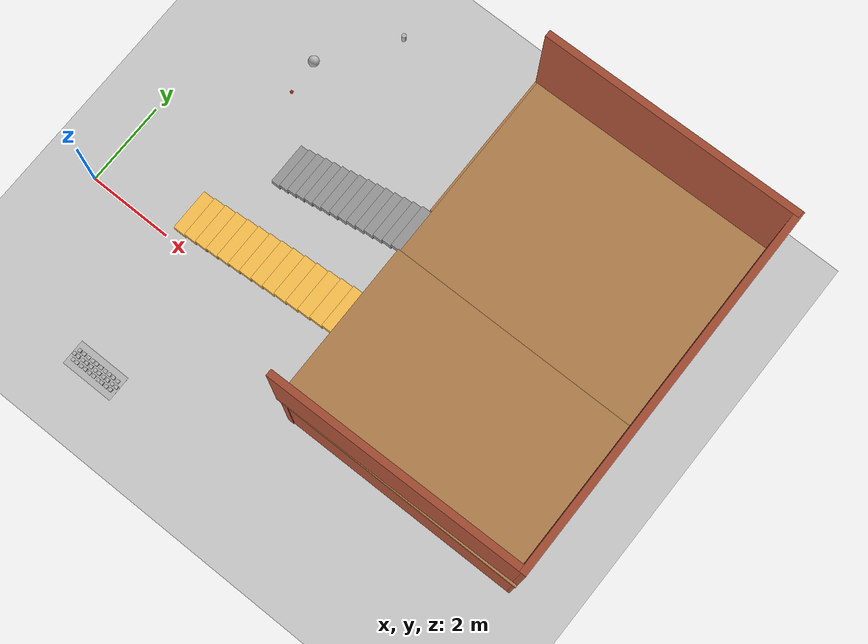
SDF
<sdf version="1.7">
 <world name="default">
  <model name="ground_plane">
   <static>1</static>
   <link name="link">
    <collision name="collision">
     <geometry><plane><normal>0 0 1</normal><size>100 100</size></plane></geometry>
     <surface><friction><ode><mu>100</mu><mu2>50</mu2></ode></friction></surface>
    </collision>
    <visual name="visual">
     <cast_shadows>0</cast_shadows>
     <geometry><plane><normal>0 0 1</normal><size>100 100</size></plane></geometry>
     <material>
      <script><uri>file://media/materials/scripts/gazebo.material</uri><name>Gazebo/Grey</name></script>
     </material>
    </visual>
   </link>
  </model>
  <model name="frc2016_ball">
   <pose>1.98556 4.93259 0.127 0 -0 0</pose>
   <link name="link">
    <inertial>
     <mass>0.213</mass>
     <inertia>
      <ixx>0.00322667</ixx>
      <ixy>0</ixy>
      <ixz>0</ixz>
      <iyy>0.00322667</iyy>
      <iyz>0</iyz>
      <izz>0.00322667</izz>
     </inertia>
    </inertial>
    <visual name="visual"><geometry><sphere><radius>0.127</radius></sphere></geometry></visual>
    <collision name="collision">
     <geometry><sphere><radius>0.127</radius></sphere></geometry>
     <surface>
      <bounce><restitution_coefficient>0.15937</restitution_coefficient><threshold>0</threshold></bounce>
      <contact><ode><max_vel>100</max_vel><min_depth>0.001</min_depth></ode></contact>
     </surface>
    </collision>
   </link>
  </model>
  <model name="beer">
   <link name="link">
    <pose>0 0 0.115 0 -0 0</pose>
    <inertial>
     <mass>0.39</mass>
     <inertia><ixx>0.00058</ixx><ixy>0</ixy><ixz>0</ixz><iyy>0.00058</iyy><iyz>0</iyz><izz>0.00019</izz></inertia>
    </inertial>
    <collision name="collision">
     <geometry><cylinder><radius>0.055</radius><length>0.23</length></cylinder></geometry>
    </collision>
    <visual name="visual">
     <geometry><cylinder><radius>0.055</radius><length>0.23</length></cylinder></geometry>
     <material>
      <script>
       <uri>model://beer/materials/scripts</uri>
       <uri>model://beer/materials/textures</uri>
       <name>Beer/Diffuse</name>
      </script>
     </material>
    </visual>
   </link>
   <pose>3.1628 6.57992 -7e-06 0 0 -3.1e-05</pose>
  </model>
  <model name="cricket_ball">
   <link name="link">
    <pose>0 0 0.0375 0 -0 0</pose>
    <inertial>
     <mass>0.1467</mass>
     <inertia>
      <ixx>8.25187e-05</ixx>
      <ixy>0</ixy>
      <ixz>0</ixz>
      <iyy>8.25187e-05</iyy>
      <iyz>0</iyz>
      <izz>8.25187e-05</izz>
     </inertia>
    </inertial>
    <collision name="collision">
     <geometry><sphere><radius>0.0375</radius></sphere></geometry>
     <surface>
      <contact>
       <poissons_ratio>0.347</poissons_ratio>
       <elastic_modulus>8.8e+09</elastic_modulus>
       <ode><kp>100000</kp><kd>100</kd><max_vel>100</max_vel><min_depth>0.001</min_depth></ode>
      </contact>
      <friction>
       <torsional>
        <coefficient>1</coefficient>
        <use_patch_radius>0</use_patch_radius>
        <surface_radius>0.01</surface_radius>
       </torsional>
      </friction>
     </surface>
    </collision>
    <visual name="visual">
     <geometry><sphere><radius>0.0375</radius></sphere></geometry>
     <material>
      <script><uri>file://media/materials/scripts/gazebo.material</uri><name>Gazebo/Red</name></script>
     </material>
    </visual>
    <velocity_decay><linear>0</linear><angular>0.005</angular></velocity_decay>
   </link>
   <pose>2.0353 4.1192 -0.001014 0 -0 0</pose>
  </model>
  <model name="stairs2_0">
   <pose>7.61055 2.7524 0 0 -0 1.5768</pose>
   <link name="Floor_4">
    <pose>-0.01758 -1.72707 2.5 0 -0 0</pose>
    <visual name="Floor_4_Visual_0">
     <pose>-2.30149 0 0.05 0 -0 0</pose>
     <geometry><box><size>3.75682 5.7631 0.1</size></box></geometry>
     <material>
      <script><uri>file://media/materials/scripts/gazebo.material</uri><name>Gazebo/Wood</name></script>
      <ambient>1 1 1 1</ambient>
     </material>
     <meta><layer>1</layer></meta>
    </visual>
    <collision name="Floor_4_Collision_0">
     <geometry><box><size>3.75682 5.7631 0.1</size></box></geometry>
     <pose>-2.30149 0 0.05 0 -0 0</pose>
    </collision>
    <visual name="Floor_4_Visual_1">
     <pose>1.87841 -0.022934 0.05 0 -0 0</pose>
     <geometry><box><size>4.60298 5.71723 0.1</size></box></geometry>
     <material>
      <script><uri>file://media/materials/scripts/gazebo.material</uri><name>Gazebo/Wood</name></script>
      <ambient>1 1 1 1</ambient>
     </material>
     <meta><layer>1</layer></meta>
    </visual>
    <collision name="Floor_4_Collision_1">
     <geometry><box><size>4.60298 5.71723 0.1</size></box></geometry>
     <pose>1.87841 -0.022934 0.05 0 -0 0</pose>
    </collision>
    <visual name="Floor_4_Visual_2">
     <pose>2.37841 2.85862 0.05 0 -0 0</pose>
     <geometry><box><size>3.60298 0.045868 0.1</size></box></geometry>
     <material>
      <script><uri>file://media/materials/scripts/gazebo.material</uri><name>Gazebo/Wood</name></script>
      <ambient>1 1 1 1</ambient>
     </material>
     <meta><layer>1</layer></meta>
    </visual>
    <collision name="Floor_4_Collision_2">
     <geometry><box><size>3.60298 0.045868 0.1</size></box></geometry>
     <pose>2.37841 2.85862 0.05 0 -0 0</pose>
    </collision>
   </link>
   <link name="Stairs_3">
    <visual name="Stairs_3_Visual_0">
     <pose>0.059339 4.49195 0.083333 0 -0 0</pose>
     <geometry><box><size>1 0.233333 0.166667</size></box></geometry>
     <material>
      <script><uri>file://media/materials/scripts/gazebo.material</uri><name>Gazebo/Grey</name></script>
      <ambient>1 1 1 1</ambient>
     </material>
     <meta><layer>0</layer></meta>
    </visual>
    <collision name="Stairs_3_Collision_0">
     <geometry><box><size>1 0.233333 0.166667</size></box></geometry>
     <pose>0.059339 4.49195 0.083333 0 -0 0</pose>
    </collision>
    <visual name="Stairs_3_Visual_1">
     <pose>0.059339 4.25862 0.25 0 -0 0</pose>
     <geometry><box><size>1 0.233333 0.166667</size></box></geometry>
     <material>
      <script><uri>file://media/materials/scripts/gazebo.material</uri><name>Gazebo/Grey</name></script>
      <ambient>1 1 1 1</ambient>
     </material>
     <meta><layer>0</layer></meta>
    </visual>
    <collision name="Stairs_3_Collision_1">
     <geometry><box><size>1 0.233333 0.166667</size></box></geometry>
     <pose>0.059339 4.25862 0.25 0 -0 0</pose>
    </collision>
    <visual name="Stairs_3_Visual_2">
     <pose>0.059339 4.02528 0.416667 0 -0 0</pose>
     <geometry><box><size>1 0.233333 0.166667</size></box></geometry>
     <material>
      <script><uri>file://media/materials/scripts/gazebo.material</uri><name>Gazebo/Grey</name></script>
      <ambient>1 1 1 1</ambient>
     </material>
     <meta><layer>0</layer></meta>
    </visual>
    <collision name="Stairs_3_Collision_2">
     <geometry><box><size>1 0.233333 0.166667</size></box></geometry>
     <pose>0.059339 4.02528 0.416667 0 -0 0</pose>
    </collision>
    <visual name="Stairs_3_Visual_3">
     <pose>0.059339 3.79195 0.583333 0 -0 0</pose>
     <geometry><box><size>1 0.233333 0.166667</size></box></geometry>
     <material>
      <script><uri>file://media/materials/scripts/gazebo.material</uri><name>Gazebo/Grey</name></script>
      <ambient>1 1 1 1</ambient>
     </material>
     <meta><layer>0</layer></meta>
    </visual>
    <collision name="Stairs_3_Collision_3">
     <geometry><box><size>1 0.233333 0.166667</size></box></geometry>
     <pose>0.059339 3.79195 0.583333 0 -0 0</pose>
    </collision>
    <visual name="Stairs_3_Visual_4">
     <pose>0.059339 3.55862 0.75 0 -0 0</pose>
     <geometry><box><size>1 0.233333 0.166667</size></box></geometry>
     <material>
      <script><uri>file://media/materials/scripts/gazebo.material</uri><name>Gazebo/Grey</name></script>
      <ambient>1 1 1 1</ambient>
     </material>
     <meta><layer>0</layer></meta>
    </visual>
    <collision name="Stairs_3_Collision_4">
     <geometry><box><size>1 0.233333 0.166667</size></box></geometry>
     <pose>0.059339 3.55862 0.75 0 -0 0</pose>
    </collision>
    <visual name="Stairs_3_Visual_5">
     <pose>0.059339 3.32528 0.916667 0 -0 0</pose>
     <geometry><box><size>1 0.233333 0.166667</size></box></geometry>
     <material>
      <script><uri>file://media/materials/scripts/gazebo.material</uri><name>Gazebo/Grey</name></script>
      <ambient>1 1 1 1</ambient>
     </material>
     <meta><layer>0</layer></meta>
    </visual>
    <collision name="Stairs_3_Collision_5">
     <geometry><box><size>1 0.233333 0.166667</size></box></geometry>
     <pose>0.059339 3.32528 0.916667 0 -0 0</pose>
    </collision>
    <visual name="Stairs_3_Visual_6">
     <pose>0.059339 3.09195 1.08333 0 -0 0</pose>
     <geometry><box><size>1 0.233333 0.166667</size></box></geometry>
     <material>
      <script><uri>file://media/materials/scripts/gazebo.material</uri><name>Gazebo/Grey</name></script>
      <ambient>1 1 1 1</ambient>
     </material>
     <meta><layer>0</layer></meta>
    </visual>
    <collision name="Stairs_3_Collision_6">
     <geometry><box><size>1 0.233333 0.166667</size></box></geometry>
     <pose>0.059339 3.09195 1.08333 0 -0 0</pose>
    </collision>
    <visual name="Stairs_3_Visual_7">
     <pose>0.059339 2.85862 1.25 0 -0 0</pose>
     <geometry><box><size>1 0.233333 0.166667</size></box></geometry>
     <material>
      <script><uri>file://media/materials/scripts/gazebo.material</uri><name>Gazebo/Grey</name></script>
      <ambient>1 1 1 1</ambient>
     </material>
     <meta><layer>0</layer></meta>
    </visual>
    <collision name="Stairs_3_Collision_7">
     <geometry><box><size>1 0.233333 0.166667</size></box></geometry>
     <pose>0.059339 2.85862 1.25 0 -0 0</pose>
    </collision>
    <visual name="Stairs_3_Visual_8">
     <pose>0.059339 2.62528 1.41667 0 -0 0</pose>
     <geometry><box><size>1 0.233333 0.166667</size></box></geometry>
     <material>
      <script><uri>file://media/materials/scripts/gazebo.material</uri><name>Gazebo/Grey</name></script>
      <ambient>1 1 1 1</ambient>
     </material>
     <meta><layer>0</layer></meta>
    </visual>
    <collision name="Stairs_3_Collision_8">
     <geometry><box><size>1 0.233333 0.166667</size></box></geometry>
     <pose>0.059339 2.62528 1.41667 0 -0 0</pose>
    </collision>
    <visual name="Stairs_3_Visual_9">
     <pose>0.059339 2.39195 1.58333 0 -0 0</pose>
     <geometry><box><size>1 0.233333 0.166667</size></box></geometry>
     <material>
      <script><uri>file://media/materials/scripts/gazebo.material</uri><name>Gazebo/Grey</name></script>
      <ambient>1 1 1 1</ambient>
     </material>
     <meta><layer>0</layer></meta>
    </visual>
    <collision name="Stairs_3_Collision_9">
     <geometry><box><size>1 0.233333 0.166667</size></box></geometry>
     <pose>0.059339 2.39195 1.58333 0 -0 0</pose>
    </collision>
    <visual name="Stairs_3_Visual_10">
     <pose>0.059339 2.15862 1.75 0 -0 0</pose>
     <geometry><box><size>1 0.233333 0.166667</size></box></geometry>
     <material>
      <script><uri>file://media/materials/scripts/gazebo.material</uri><name>Gazebo/Grey</name></script>
      <ambient>1 1 1 1</ambient>
     </material>
     <meta><layer>0</layer></meta>
    </visual>
    <collision name="Stairs_3_Collision_10">
     <geometry><box><size>1 0.233333 0.166667</size></box></geometry>
     <pose>0.059339 2.15862 1.75 0 -0 0</pose>
    </collision>
    <visual name="Stairs_3_Visual_11">
     <pose>0.059339 1.92528 1.91667 0 -0 0</pose>
     <geometry><box><size>1 0.233333 0.166667</size></box></geometry>
     <material>
      <script><uri>file://media/materials/scripts/gazebo.material</uri><name>Gazebo/Grey</name></script>
      <ambient>1 1 1 1</ambient>
     </material>
     <meta><layer>0</layer></meta>
    </visual>
    <collision name="Stairs_3_Collision_11">
     <geometry><box><size>1 0.233333 0.166667</size></box></geometry>
     <pose>0.059339 1.92528 1.91667 0 -0 0</pose>
    </collision>
    <visual name="Stairs_3_Visual_12">
     <pose>0.059339 1.69195 2.08333 0 -0 0</pose>
     <geometry><box><size>1 0.233333 0.166667</size></box></geometry>
     <material>
      <script><uri>file://media/materials/scripts/gazebo.material</uri><name>Gazebo/Grey</name></script>
      <ambient>1 1 1 1</ambient>
     </material>
     <meta><layer>0</layer></meta>
    </visual>
    <collision name="Stairs_3_Collision_12">
     <geometry><box><size>1 0.233333 0.166667</size></box></geometry>
     <pose>0.059339 1.69195 2.08333 0 -0 0</pose>
    </collision>
    <visual name="Stairs_3_Visual_13">
     <pose>0.059339 1.45862 2.25 0 -0 0</pose>
     <geometry><box><size>1 0.233333 0.166667</size></box></geometry>
     <material>
      <script><uri>file://media/materials/scripts/gazebo.material</uri><name>Gazebo/Grey</name></script>
      <ambient>1 1 1 1</ambient>
     </material>
     <meta><layer>0</layer></meta>
    </visual>
    <collision name="Stairs_3_Collision_13">
     <geometry><box><size>1 0.233333 0.166667</size></box></geometry>
     <pose>0.059339 1.45862 2.25 0 -0 0</pose>
    </collision>
    <visual name="Stairs_3_Visual_14">
     <pose>0.059339 1.22528 2.41667 0 -0 0</pose>
     <geometry><box><size>1 0.233333 0.166667</size></box></geometry>
     <material>
      <script><uri>file://media/materials/scripts/gazebo.material</uri><name>Gazebo/Grey</name></script>
      <ambient>1 1 1 1</ambient>
     </material>
     <meta><layer>0</layer></meta>
    </visual>
    <collision name="Stairs_3_Collision_14">
     <geometry><box><size>1 0.233333 0.166667</size></box></geometry>
     <pose>0.059339 1.22528 2.41667 0 -0 0</pose>
    </collision>
   </link>
   <link name="Wall_44">
    <collision name="Wall_44_Collision">
     <geometry><box><size>5.70366 0.15 2.5</size></box></geometry>
     <pose>0 0 1.25 0 -0 0</pose>
    </collision>
    <visual name="Wall_44_Visual">
     <pose>0 0 1.25 0 -0 0</pose>
     <geometry><box><size>5.70366 0.15 2.5</size></box></geometry>
     <material>
      <script><uri>file://media/materials/scripts/gazebo.material</uri><name>Gazebo/Bricks</name></script>
      <ambient>1 1 1 1</ambient>
     </material>
     <meta><layer>0</layer></meta>
    </visual>
    <pose>-4.0693 -1.71554 0 0 -0 -1.5708</pose>
   </link>
   <link name="Wall_45">
    <collision name="Wall_45_Collision">
     <geometry><box><size>8.30592 0.15 2.5</size></box></geometry>
     <pose>0 0 1.25 0 -0 0</pose>
    </collision>
    <visual name="Wall_45_Visual">
     <pose>0 0 1.25 0 -0 0</pose>
     <geometry><box><size>8.30592 0.15 2.5</size></box></geometry>
     <material>
      <script><uri>file://media/materials/scripts/gazebo.material</uri><name>Gazebo/Bricks</name></script>
      <ambient>1 1 1 1</ambient>
     </material>
     <meta><layer>0</layer></meta>
    </visual>
    <pose>0.008655 -4.53046 0 0 -0 -0.000761</pose>
   </link>
   <link name="Wall_46">
    <collision name="Wall_46_Collision">
     <geometry><box><size>5.6862 0.15 2.5</size></box></geometry>
     <pose>0 0 1.25 0 -0 0</pose>
    </collision>
    <visual name="Wall_46_Visual">
     <pose>0 0 1.25 0 -0 0</pose>
     <geometry><box><size>5.6862 0.15 2.5</size></box></geometry>
     <material>
      <script><uri>file://media/materials/scripts/gazebo.material</uri><name>Gazebo/Bricks</name></script>
      <ambient>1 1 1 1</ambient>
     </material>
     <meta><layer>0</layer></meta>
    </visual>
    <pose>4.07787 -1.73049 0 0 -0 1.57396</pose>
   </link>
   <link name="Wall_47">
    <collision name="Wall_47_Collision">
     <geometry><box><size>8.30592 0.15 2.5</size></box></geometry>
     <pose>0 0 1.25 0 -0 0</pose>
    </collision>
    <visual name="Wall_47_Visual">
     <pose>0 0 1.25 0 -0 0</pose>
     <geometry><box><size>8.30592 0.15 2.5</size></box></geometry>
     <material>
      <script><uri>file://media/materials/scripts/gazebo.material</uri><name>Gazebo/Bricks</name></script>
      <ambient>1 1 1 1</ambient>
     </material>
     <meta><layer>0</layer></meta>
    </visual>
    <pose>-0.008835 1.0407 0 0 -0 3.14083</pose>
   </link>
   <link name="Wall_49">
    <collision name="Wall_49_Collision">
     <geometry><box><size>5.7214 0.15 2.5</size></box></geometry>
     <pose>0 0 1.25 0 -0 0</pose>
    </collision>
    <visual name="Wall_49_Visual">
     <pose>0 0 1.25 0 -0 0</pose>
     <geometry><box><size>5.7214 0.15 2.5</size></box></geometry>
     <material>
      <script><uri>file://media/materials/scripts/gazebo.material</uri><name>Gazebo/Bricks</name></script>
      <ambient>1 1 1 1</ambient>
     </material>
     <meta><layer>1</layer></meta>
    </visual>
    <pose>-4.09554 -1.7068 2.5 0 -0 -1.56138</pose>
   </link>
   <link name="Wall_50">
    <collision name="Wall_50_Collision">
     <geometry><box><size>8.30592 0.15 2.5</size></box></geometry>
     <pose>0 0 1.25 0 -0 0</pose>
    </collision>
    <visual name="Wall_50_Visual">
     <pose>0 0 1.25 0 -0 0</pose>
     <geometry><box><size>8.30592 0.15 2.5</size></box></geometry>
     <material>
      <script><uri>file://media/materials/scripts/gazebo.material</uri><name>Gazebo/Bricks</name></script>
      <ambient>1 1 1 1</ambient>
     </material>
     <meta><layer>1</layer></meta>
    </visual>
    <pose>0.008655 -4.53045 2.5 0 -0 -0.000761</pose>
   </link>
   <link name="Wall_51">
    <collision name="Wall_51_Collision">
     <geometry><box><size>5.7214 0.15 2.5</size></box></geometry>
     <pose>0 0 1.25 0 -0 0</pose>
    </collision>
    <visual name="Wall_51_Visual">
     <pose>0 0 1.25 0 -0 0</pose>
     <geometry><box><size>5.7214 0.15 2.5</size></box></geometry>
     <material>
      <script><uri>file://media/materials/scripts/gazebo.material</uri><name>Gazebo/Bricks</name></script>
      <ambient>1 1 1 1</ambient>
     </material>
     <meta><layer>1</layer></meta>
    </visual>
    <pose>4.06038 -1.713 2.5 0 -0 1.58021</pose>
   </link>
   <static>1</static>
  </model>
  <model name="frc2016_roughterrain_3">
   <static>1</static>
   <link name="link">
    <visual name="platform">
     <pose>0 0 0.08269 0 -0 0</pose>
     <geometry><box><size>1.27 0.5969 0.003175</size></box></geometry>
    </visual>
    <collision name="platform">
     <pose>0 0 0.08269 0 -0 0</pose>
     <geometry><box><size>1.27 0.5969 0.003175</size></box></geometry>
    </collision>
    <visual name="row1_block1_sm">
     <pose>0.51435 0.1143 0.09698 0 -0 0</pose>
     <geometry><box><size>0.0762 0.0762 0.0254</size></box></geometry>
    </visual>
    <collision name="row1_block1_sm">
     <pose>0.51435 0.1143 0.09698 0 -0 0</pose>
     <geometry><box><size>0.0762 0.0762 0.0254</size></box></geometry>
    </collision>
    <visual name="row1_block2_lg">
     <pose>0.40005 0.1143 0.12238 0 -0 0</pose>
     <geometry><box><size>0.0762 0.0762 0.0762</size></box></geometry>
    </visual>
    <collision name="row1_block2_lg">
     <pose>0.40005 0.1143 0.12238 0 -0 0</pose>
     <geometry><box><size>0.0762 0.0762 0.0762</size></box></geometry>
    </collision>
    <visual name="row1_block3_md">
     <pose>0.28575 0.1143 0.10968 0 -0 0</pose>
     <geometry><box><size>0.0762 0.0762 0.0508</size></box></geometry>
    </visual>
    <collision name="row1_block3_md">
     <pose>0.28575 0.1143 0.10968 0 -0 0</pose>
     <geometry><box><size>0.0762 0.0762 0.0508</size></box></geometry>
    </collision>
    <visual name="row1_block4_sm">
     <pose>0.17145 0.1143 0.09698 0 -0 0</pose>
     <geometry><box><size>0.0762 0.0762 0.0254</size></box></geometry>
    </visual>
    <collision name="row1_block4_sm">
     <pose>0.17145 0.1143 0.09698 0 -0 0</pose>
     <geometry><box><size>0.0762 0.0762 0.0254</size></box></geometry>
    </collision>
    <visual name="row1_block5_md">
     <pose>0.05715 0.1143 0.10968 0 -0 0</pose>
     <geometry><box><size>0.0762 0.0762 0.0508</size></box></geometry>
    </visual>
    <collision name="row1_block5_md">
     <pose>0.05715 0.1143 0.10968 0 -0 0</pose>
     <geometry><box><size>0.0762 0.0762 0.0508</size></box></geometry>
    </collision>
    <visual name="row1_block6_lg">
     <pose>-0.05715 0.1143 0.12238 0 -0 0</pose>
     <geometry><box><size>0.0762 0.0762 0.0762</size></box></geometry>
    </visual>
    <collision name="row1_block6_lg">
     <pose>-0.05715 0.1143 0.12238 0 -0 0</pose>
     <geometry><box><size>0.0762 0.0762 0.0762</size></box></geometry>
    </collision>
    <visual name="row1_block7_sm">
     <pose>-0.17145 0.1143 0.09698 0 -0 0</pose>
     <geometry><box><size>0.0762 0.0762 0.0254</size></box></geometry>
    </visual>
    <collision name="row1_block7_sm">
     <pose>-0.17145 0.1143 0.09698 0 -0 0</pose>
     <geometry><box><size>0.0762 0.0762 0.0254</size></box></geometry>
    </collision>
    <visual name="row1_block8_sm">
     <pose>-0.28575 0.1143 0.09698 0 -0 0</pose>
     <geometry><box><size>0.0762 0.0762 0.0254</size></box></geometry>
    </visual>
    <collision name="row1_block8_sm">
     <pose>-0.28575 0.1143 0.09698 0 -0 0</pose>
     <geometry><box><size>0.0762 0.0762 0.0254</size></box></geometry>
    </collision>
    <visual name="row1_block9_md">
     <pose>-0.40005 0.1143 0.10968 0 -0 0</pose>
     <geometry><box><size>0.0762 0.0762 0.0508</size></box></geometry>
    </visual>
    <collision name="row1_block9_md">
     <pose>-0.40005 0.1143 0.10968 0 -0 0</pose>
     <geometry><box><size>0.0762 0.0762 0.0508</size></box></geometry>
    </collision>
    <visual name="row1_block10_lg">
     <pose>-0.51435 0.1143 0.12238 0 -0 0</pose>
     <geometry><box><size>0.0762 0.0762 0.0762</size></box></geometry>
    </visual>
    <collision name="row1_block10_lg">
     <pose>-0.51435 0.1143 0.12238 0 -0 0</pose>
     <geometry><box><size>0.0762 0.0762 0.0762</size></box></geometry>
    </collision>
    <visual name="row2_block1_md">
     <pose>0.5715 0 0.10968 0 -0 0</pose>
     <geometry><box><size>0.0762 0.0762 0.0508</size></box></geometry>
    </visual>
    <collision name="row2_block1_md">
     <pose>0.5715 0 0.10968 0 -0 0</pose>
     <geometry><box><size>0.0762 0.0762 0.0508</size></box></geometry>
    </collision>
    <visual name="row2_block2_sm">
     <pose>0.4572 0 0.09698 0 -0 0</pose>
     <geometry><box><size>0.0762 0.0762 0.0254</size></box></geometry>
    </visual>
    <collision name="row2_block2_sm">
     <pose>0.4572 0 0.09698 0 -0 0</pose>
     <geometry><box><size>0.0762 0.0762 0.0254</size></box></geometry>
    </collision>
    <visual name="row2_block3_lg">
     <pose>0.3429 0 0.12238 0 -0 0</pose>
     <geometry><box><size>0.0762 0.0762 0.0762</size></box></geometry>
    </visual>
    <collision name="row2_block3_lg">
     <pose>0.3429 0 0.12238 0 -0 0</pose>
     <geometry><box><size>0.0762 0.0762 0.0762</size></box></geometry>
    </collision>
    <visual name="row2_block4_md">
     <pose>0.2286 0 0.10968 0 -0 0</pose>
     <geometry><box><size>0.0762 0.0762 0.0508</size></box></geometry>
    </visual>
    <collision name="row2_block4_md">
     <pose>0.2286 0 0.10968 0 -0 0</pose>
     <geometry><box><size>0.0762 0.0762 0.0508</size></box></geometry>
    </collision>
    <visual name="row2_block5_lg">
     <pose>0.1143 0 0.12238 0 -0 0</pose>
     <geometry><box><size>0.0762 0.0762 0.0762</size></box></geometry>
    </visual>
    <collision name="row2_block5_lg">
     <pose>0.1143 0 0.12238 0 -0 0</pose>
     <geometry><box><size>0.0762 0.0762 0.0762</size></box></geometry>
    </collision>
    <visual name="row2_block6_sm">
     <pose>0 0 0.09698 0 -0 0</pose>
     <geometry><box><size>0.0762 0.0762 0.0254</size></box></geometry>
    </visual>
    <collision name="row2_block6_sm">
     <pose>0 0 0.09698 0 -0 0</pose>
     <geometry><box><size>0.0762 0.0762 0.0254</size></box></geometry>
    </collision>
    <visual name="row2_block7_md">
     <pose>-0.1143 0 0.10968 0 -0 0</pose>
     <geometry><box><size>0.0762 0.0762 0.0508</size></box></geometry>
    </visual>
    <collision name="row2_block7_md">
     <pose>-0.1143 0 0.10968 0 -0 0</pose>
     <geometry><box><size>0.0762 0.0762 0.0508</size></box></geometry>
    </collision>
    <visual name="row2_block8_lg">
     <pose>-0.2286 0 0.12238 0 -0 0</pose>
     <geometry><box><size>0.0762 0.0762 0.0762</size></box></geometry>
    </visual>
    <collision name="row2_block8_lg">
     <pose>-0.2286 0 0.12238 0 -0 0</pose>
     <geometry><box><size>0.0762 0.0762 0.0762</size></box></geometry>
    </collision>
    <visual name="row2_block9_sm">
     <pose>-0.3429 0 0.09698 0 -0 0</pose>
     <geometry><box><size>0.0762 0.0762 0.0254</size></box></geometry>
    </visual>
    <collision name="row2_block9_sm">
     <pose>-0.3429 0 0.09698 0 -0 0</pose>
     <geometry><box><size>0.0762 0.0762 0.0254</size></box></geometry>
    </collision>
    <visual name="row2_block10_lg">
     <pose>-0.4572 0 0.12238 0 -0 0</pose>
     <geometry><box><size>0.0762 0.0762 0.0762</size></box></geometry>
    </visual>
    <collision name="row2_block10_lg">
     <pose>-0.4572 0 0.12238 0 -0 0</pose>
     <geometry><box><size>0.0762 0.0762 0.0762</size></box></geometry>
    </collision>
    <visual name="row2_block11_md">
     <pose>-0.5715 0 0.10968 0 -0 0</pose>
     <geometry><box><size>0.0762 0.0762 0.0508</size></box></geometry>
    </visual>
    <collision name="row2_block11_md">
     <pose>-0.5715 0 0.10968 0 -0 0</pose>
     <geometry><box><size>0.0762 0.0762 0.0508</size></box></geometry>
    </collision>
    <visual name="row3_block1_lg">
     <pose>0.51435 -0.1143 0.12238 0 -0 0</pose>
     <geometry><box><size>0.0762 0.0762 0.0762</size></box></geometry>
    </visual>
    <collision name="row3_block1_lg">
     <pose>0.51435 -0.1143 0.12238 0 -0 0</pose>
     <geometry><box><size>0.0762 0.0762 0.0762</size></box></geometry>
    </collision>
    <visual name="row3_block2_md">
     <pose>0.40005 -0.1143 0.10968 0 -0 0</pose>
     <geometry><box><size>0.0762 0.0762 0.0508</size></box></geometry>
    </visual>
    <collision name="row3_block2_md">
     <pose>0.40005 -0.1143 0.10968 0 -0 0</pose>
     <geometry><box><size>0.0762 0.0762 0.0508</size></box></geometry>
    </collision>
    <visual name="row3_block3_lg">
     <pose>0.28575 -0.1143 0.12238 0 -0 0</pose>
     <geometry><box><size>0.0762 0.0762 0.0762</size></box></geometry>
    </visual>
    <collision name="row3_block3_lg">
     <pose>0.28575 -0.1143 0.12238 0 -0 0</pose>
     <geometry><box><size>0.0762 0.0762 0.0762</size></box></geometry>
    </collision>
    <visual name="row3_block4_sm">
     <pose>0.17145 -0.1143 0.09698 0 -0 0</pose>
     <geometry><box><size>0.0762 0.0762 0.0254</size></box></geometry>
    </visual>
    <collision name="row3_block4_sm">
     <pose>0.17145 -0.1143 0.09698 0 -0 0</pose>
     <geometry><box><size>0.0762 0.0762 0.0254</size></box></geometry>
    </collision>
    <visual name="row3_block5_md">
     <pose>0.05715 -0.1143 0.10968 0 -0 0</pose>
     <geometry><box><size>0.0762 0.0762 0.0508</size></box></geometry>
    </visual>
    <collision name="row3_block5_md">
     <pose>0.05715 -0.1143 0.10968 0 -0 0</pose>
     <geometry><box><size>0.0762 0.0762 0.0508</size></box></geometry>
    </collision>
    <visual name="row3_block6_md">
     <pose>-0.05715 -0.1143 0.10968 0 -0 0</pose>
     <geometry><box><size>0.0762 0.0762 0.0508</size></box></geometry>
    </visual>
    <collision name="row3_block6_md">
     <pose>-0.05715 -0.1143 0.10968 0 -0 0</pose>
     <geometry><box><size>0.0762 0.0762 0.0508</size></box></geometry>
    </collision>
    <visual name="row3_block7_lg">
     <pose>-0.17145 -0.1143 0.12238 0 -0 0</pose>
     <geometry><box><size>0.0762 0.0762 0.0762</size></box></geometry>
    </visual>
    <collision name="row3_block7_lg">
     <pose>-0.17145 -0.1143 0.12238 0 -0 0</pose>
     <geometry><box><size>0.0762 0.0762 0.0762</size></box></geometry>
    </collision>
    <visual name="row3_block8_sm">
     <pose>-0.28575 -0.1143 0.09698 0 -0 0</pose>
     <geometry><box><size>0.0762 0.0762 0.0254</size></box></geometry>
    </visual>
    <collision name="row3_block8_sm">
     <pose>-0.28575 -0.1143 0.09698 0 -0 0</pose>
     <geometry><box><size>0.0762 0.0762 0.0254</size></box></geometry>
    </collision>
    <visual name="row3_block9_md">
     <pose>-0.40005 -0.1143 0.10968 0 -0 0</pose>
     <geometry><box><size>0.0762 0.0762 0.0508</size></box></geometry>
    </visual>
    <collision name="row3_block9_md">
     <pose>-0.40005 -0.1143 0.10968 0 -0 0</pose>
     <geometry><box><size>0.0762 0.0762 0.0508</size></box></geometry>
    </collision>
    <visual name="row3_block10_sm">
     <pose>-0.51435 -0.1143 0.09698 0 -0 0</pose>
     <geometry><box><size>0.0762 0.0762 0.0254</size></box></geometry>
    </visual>
    <collision name="row3_block10_sm">
     <pose>-0.51435 -0.1143 0.09698 0 -0 0</pose>
     <geometry><box><size>0.0762 0.0762 0.0254</size></box></geometry>
    </collision>
   </link>
   <pose>2.76142 -3.12462 0 0 -0 0</pose>
  </model>
  <model name="stair2">
   <pose>4.44562 -0.282656 0 0 -0 1.5745</pose>
   <link name="Stairs_0">
    <visual name="Stairs_0_Visual_0">
     <pose>1.00712 2.23781 0.083333 0 -0 0</pose>
     <geometry><box><size>1 0.319688 0.166667</size></box></geometry>
     <material>
      <script><uri>file://media/materials/scripts/gazebo.material</uri><name>Gazebo/Grey</name></script>
      <ambient>1 0.764706 0.305882 1</ambient>
     </material>
     <meta><layer>0</layer></meta>
    </visual>
    <collision name="Stairs_0_Collision_0">
     <geometry><box><size>1 0.319688 0.166667</size></box></geometry>
     <pose>1.00712 2.23781 0.083333 0 -0 0</pose>
    </collision>
    <visual name="Stairs_0_Visual_1">
     <pose>1.00712 1.91813 0.25 0 -0 0</pose>
     <geometry><box><size>1 0.319688 0.166667</size></box></geometry>
     <material>
      <script><uri>file://media/materials/scripts/gazebo.material</uri><name>Gazebo/Grey</name></script>
      <ambient>1 0.764706 0.305882 1</ambient>
     </material>
     <meta><layer>0</layer></meta>
    </visual>
    <collision name="Stairs_0_Collision_1">
     <geometry><box><size>1 0.319688 0.166667</size></box></geometry>
     <pose>1.00712 1.91813 0.25 0 -0 0</pose>
    </collision>
    <visual name="Stairs_0_Visual_2">
     <pose>1.00712 1.59844 0.416667 0 -0 0</pose>
     <geometry><box><size>1 0.319688 0.166667</size></box></geometry>
     <material>
      <script><uri>file://media/materials/scripts/gazebo.material</uri><name>Gazebo/Grey</name></script>
      <ambient>1 0.764706 0.305882 1</ambient>
     </material>
     <meta><layer>0</layer></meta>
    </visual>
    <collision name="Stairs_0_Collision_2">
     <geometry><box><size>1 0.319688 0.166667</size></box></geometry>
     <pose>1.00712 1.59844 0.416667 0 -0 0</pose>
    </collision>
    <visual name="Stairs_0_Visual_3">
     <pose>1.00712 1.27875 0.583333 0 -0 0</pose>
     <geometry><box><size>1 0.319688 0.166667</size></box></geometry>
     <material>
      <script><uri>file://media/materials/scripts/gazebo.material</uri><name>Gazebo/Grey</name></script>
      <ambient>1 0.764706 0.305882 1</ambient>
     </material>
     <meta><layer>0</layer></meta>
    </visual>
    <collision name="Stairs_0_Collision_3">
     <geometry><box><size>1 0.319688 0.166667</size></box></geometry>
     <pose>1.00712 1.27875 0.583333 0 -0 0</pose>
    </collision>
    <visual name="Stairs_0_Visual_4">
     <pose>1.00712 0.959063 0.75 0 -0 0</pose>
     <geometry><box><size>1 0.319688 0.166667</size></box></geometry>
     <material>
      <script><uri>file://media/materials/scripts/gazebo.material</uri><name>Gazebo/Grey</name></script>
      <ambient>1 0.764706 0.305882 1</ambient>
     </material>
     <meta><layer>0</layer></meta>
    </visual>
    <collision name="Stairs_0_Collision_4">
     <geometry><box><size>1 0.319688 0.166667</size></box></geometry>
     <pose>1.00712 0.959063 0.75 0 -0 0</pose>
    </collision>
    <visual name="Stairs_0_Visual_5">
     <pose>1.00712 0.639375 0.916667 0 -0 0</pose>
     <geometry><box><size>1 0.319688 0.166667</size></box></geometry>
     <material>
      <script><uri>file://media/materials/scripts/gazebo.material</uri><name>Gazebo/Grey</name></script>
      <ambient>1 0.764706 0.305882 1</ambient>
     </material>
     <meta><layer>0</layer></meta>
    </visual>
    <collision name="Stairs_0_Collision_5">
     <geometry><box><size>1 0.319688 0.166667</size></box></geometry>
     <pose>1.00712 0.639375 0.916667 0 -0 0</pose>
    </collision>
    <visual name="Stairs_0_Visual_6">
     <pose>1.00712 0.319688 1.08333 0 -0 0</pose>
     <geometry><box><size>1 0.319688 0.166667</size></box></geometry>
     <material>
      <script><uri>file://media/materials/scripts/gazebo.material</uri><name>Gazebo/Grey</name></script>
      <ambient>1 0.764706 0.305882 1</ambient>
     </material>
     <meta><layer>0</layer></meta>
    </visual>
    <collision name="Stairs_0_Collision_6">
     <geometry><box><size>1 0.319688 0.166667</size></box></geometry>
     <pose>1.00712 0.319688 1.08333 0 -0 0</pose>
    </collision>
    <visual name="Stairs_0_Visual_7">
     <pose>1.00712 -0 1.25 0 -0 0</pose>
     <geometry><box><size>1 0.319688 0.166667</size></box></geometry>
     <material>
      <script><uri>file://media/materials/scripts/gazebo.material</uri><name>Gazebo/Grey</name></script>
      <ambient>1 0.764706 0.305882 1</ambient>
     </material>
     <meta><layer>0</layer></meta>
    </visual>
    <collision name="Stairs_0_Collision_7">
     <geometry><box><size>1 0.319688 0.166667</size></box></geometry>
     <pose>1.00712 -0 1.25 0 -0 0</pose>
    </collision>
    <visual name="Stairs_0_Visual_8">
     <pose>1.00712 -0.319688 1.41667 0 -0 0</pose>
     <geometry><box><size>1 0.319688 0.166667</size></box></geometry>
     <material>
      <script><uri>file://media/materials/scripts/gazebo.material</uri><name>Gazebo/Grey</name></script>
      <ambient>1 0.764706 0.305882 1</ambient>
     </material>
     <meta><layer>0</layer></meta>
    </visual>
    <collision name="Stairs_0_Collision_8">
     <geometry><box><size>1 0.319688 0.166667</size></box></geometry>
     <pose>1.00712 -0.319688 1.41667 0 -0 0</pose>
    </collision>
    <visual name="Stairs_0_Visual_9">
     <pose>1.00712 -0.639375 1.58333 0 -0 0</pose>
     <geometry><box><size>1 0.319688 0.166667</size></box></geometry>
     <material>
      <script><uri>file://media/materials/scripts/gazebo.material</uri><name>Gazebo/Grey</name></script>
      <ambient>1 0.764706 0.305882 1</ambient>
     </material>
     <meta><layer>0</layer></meta>
    </visual>
    <collision name="Stairs_0_Collision_9">
     <geometry><box><size>1 0.319688 0.166667</size></box></geometry>
     <pose>1.00712 -0.639375 1.58333 0 -0 0</pose>
    </collision>
    <visual name="Stairs_0_Visual_10">
     <pose>1.00712 -0.959063 1.75 0 -0 0</pose>
     <geometry><box><size>1 0.319688 0.166667</size></box></geometry>
     <material>
      <script><uri>file://media/materials/scripts/gazebo.material</uri><name>Gazebo/Grey</name></script>
      <ambient>1 0.764706 0.305882 1</ambient>
     </material>
     <meta><layer>0</layer></meta>
    </visual>
    <collision name="Stairs_0_Collision_10">
     <geometry><box><size>1 0.319688 0.166667</size></box></geometry>
     <pose>1.00712 -0.959063 1.75 0 -0 0</pose>
    </collision>
    <visual name="Stairs_0_Visual_11">
     <pose>1.00712 -1.27875 1.91667 0 -0 0</pose>
     <geometry><box><size>1 0.319688 0.166667</size></box></geometry>
     <material>
      <script><uri>file://media/materials/scripts/gazebo.material</uri><name>Gazebo/Grey</name></script>
      <ambient>1 0.764706 0.305882 1</ambient>
     </material>
     <meta><layer>0</layer></meta>
    </visual>
    <collision name="Stairs_0_Collision_11">
     <geometry><box><size>1 0.319688 0.166667</size></box></geometry>
     <pose>1.00712 -1.27875 1.91667 0 -0 0</pose>
    </collision>
    <visual name="Stairs_0_Visual_12">
     <pose>1.00712 -1.59844 2.08333 0 -0 0</pose>
     <geometry><box><size>1 0.319688 0.166667</size></box></geometry>
     <material>
      <script><uri>file://media/materials/scripts/gazebo.material</uri><name>Gazebo/Grey</name></script>
      <ambient>1 0.764706 0.305882 1</ambient>
     </material>
     <meta><layer>0</layer></meta>
    </visual>
    <collision name="Stairs_0_Collision_12">
     <geometry><box><size>1 0.319688 0.166667</size></box></geometry>
     <pose>1.00712 -1.59844 2.08333 0 -0 0</pose>
    </collision>
    <visual name="Stairs_0_Visual_13">
     <pose>1.00712 -1.91813 2.25 0 -0 0</pose>
     <geometry><box><size>1 0.319688 0.166667</size></box></geometry>
     <material>
      <script><uri>file://media/materials/scripts/gazebo.material</uri><name>Gazebo/Grey</name></script>
      <ambient>1 0.764706 0.305882 1</ambient>
     </material>
     <meta><layer>0</layer></meta>
    </visual>
    <collision name="Stairs_0_Collision_13">
     <geometry><box><size>1 0.319688 0.166667</size></box></geometry>
     <pose>1.00712 -1.91813 2.25 0 -0 0</pose>
    </collision>
    <visual name="Stairs_0_Visual_14">
     <pose>1.00712 -2.23781 2.41667 0 -0 0</pose>
     <geometry><box><size>1 0.319688 0.166667</size></box></geometry>
     <material>
      <script><uri>file://media/materials/scripts/gazebo.material</uri><name>Gazebo/Grey</name></script>
      <ambient>1 0.764706 0.305882 1</ambient>
     </material>
     <meta><layer>0</layer></meta>
    </visual>
    <collision name="Stairs_0_Collision_14">
     <geometry><box><size>1 0.319688 0.166667</size></box></geometry>
     <pose>1.00712 -2.23781 2.41667 0 -0 0</pose>
    </collision>
   </link>
   <static>1</static>
  </model>
 </world>
</sdf>
